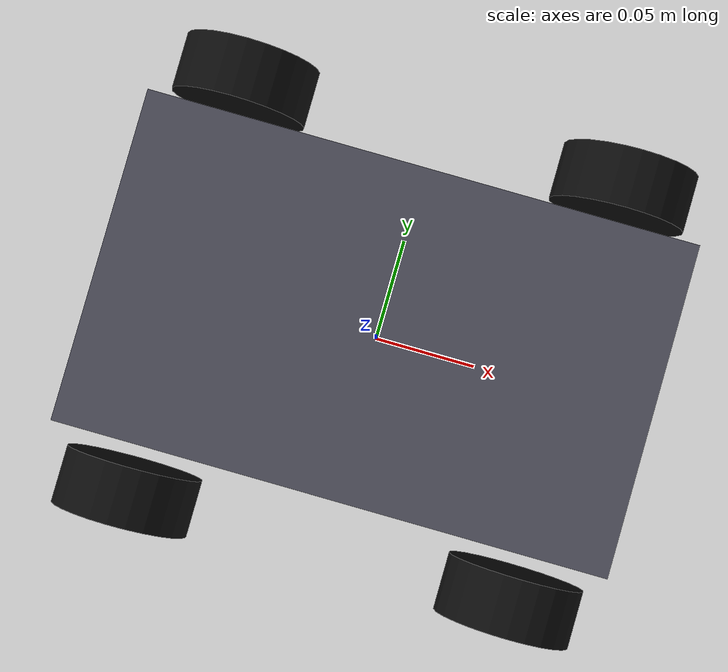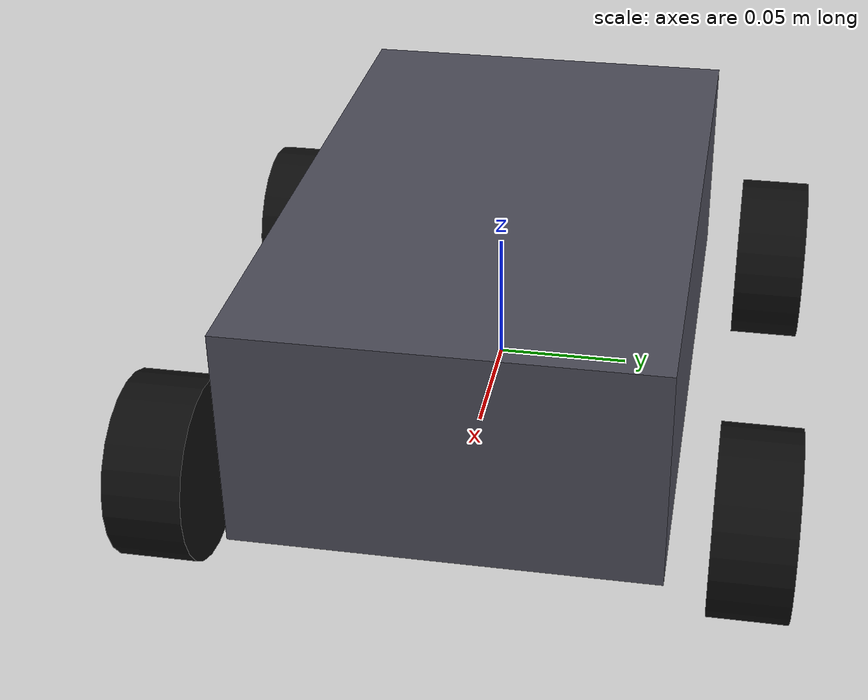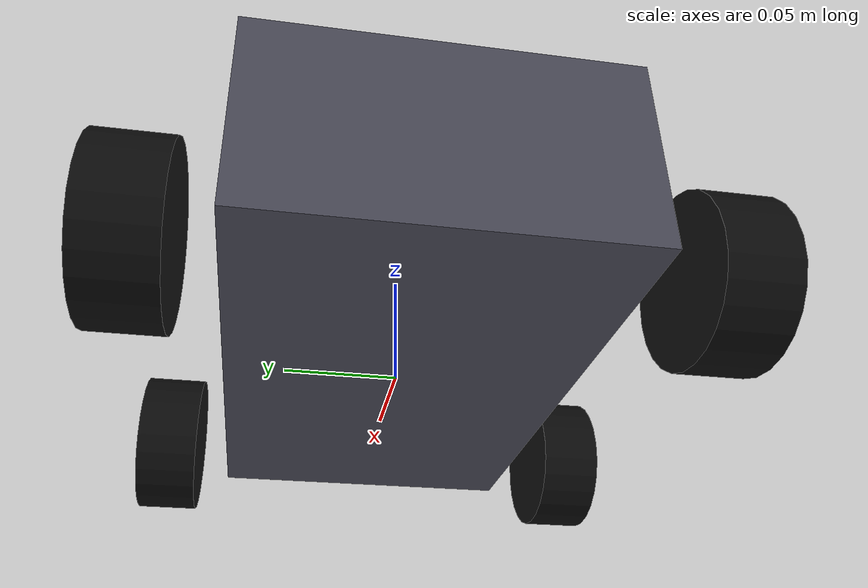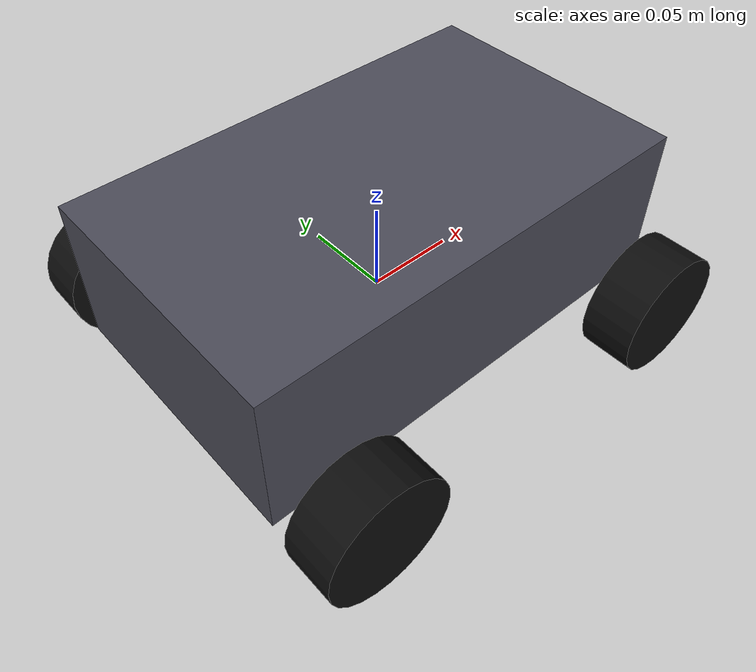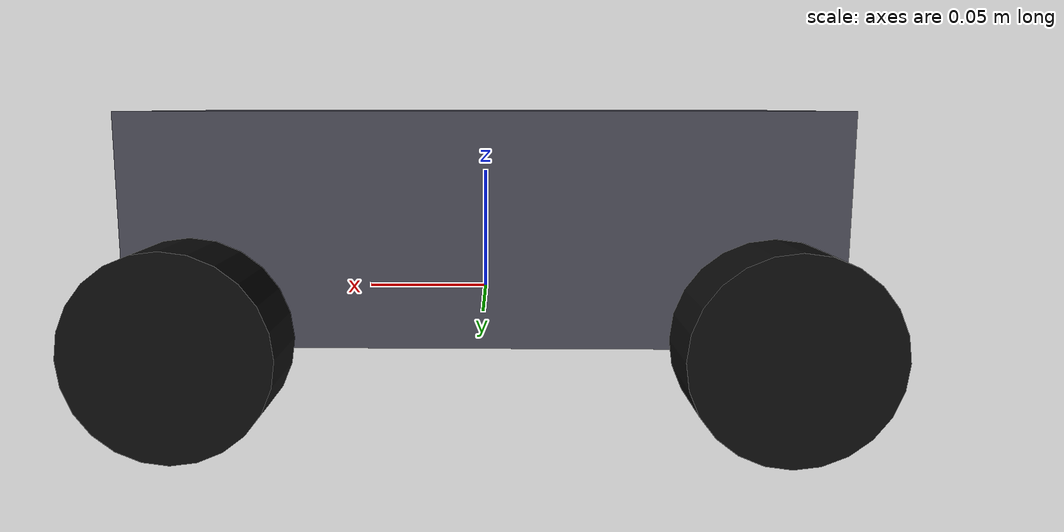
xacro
<?xml version="1.0"?>
<robot name="mecanum_robot" xmlns:xacro="http://www.ros.org/wiki/xacro">

  <!-- ============ Properties ============ -->
  <xacro:property name="chassis_length" value="0.254"/>
  <xacro:property name="chassis_width"  value="0.1524"/>
  <xacro:property name="chassis_height" value="0.083"/>
  <xacro:property name="chassis_mass"   value="5.0"/>

  <xacro:property name="wheel_radius" value="0.034"/>
  <xacro:property name="wheel_width"  value="0.0285"/>
  <xacro:property name="wheel_mass"   value="0.5"/>

  <xacro:property name="track_width"  value="0.21"/>
  <xacro:property name="axle_length"  value="0.194"/>
  <xacro:property name="wheel_z"      value="0.0"/>

  <!-- ============ Chassis ============ -->
  <link name="base_link"/>

  <link name="chassis">
    <inertial>
      <mass value="${chassis_mass}"/>
      <origin xyz="0 0 0"/>
      <inertia ixx="0.05" ixy="0" ixz="0" iyy="0.08" iyz="0" izz="0.1"/>
    </inertial>
    <visual>
      <geometry>
        <box size="${chassis_length} ${chassis_width} ${chassis_height}"/>
      </geometry>
      <material name="chassis_grey">
        <color rgba="0.3 0.3 0.35 1.0"/>
      </material>
    </visual>
    <collision>
      <geometry>
        <box size="${chassis_length} ${chassis_width} ${chassis_height}"/>
      </geometry>
    </collision>
  </link>

  <joint name="base_to_chassis" type="fixed">
    <parent link="base_link"/>
    <child link="chassis"/>
    <origin xyz="0 0 ${wheel_radius}"/>
  </joint>

  <!-- ============ Wheel macro ============ -->
  <!-- Placeholder cylinder wheels for now - real roller geometry is a later
       refinement once Week 3 kinematics are in place and you actually need
       to reason about roller contact angles. -->
  <xacro:macro name="wheel" params="prefix x_offset y_offset">
    <link name="${prefix}_wheel">
      <inertial>
        <mass value="${wheel_mass}"/>
        <origin xyz="0 0 0"/>
        <inertia ixx="0.001" ixy="0" ixz="0" iyy="0.001" iyz="0" izz="0.001"/>
      </inertial>
      <visual>
        <origin rpy="1.5708 0 0" xyz="0 0 0"/>
        <geometry>
          <cylinder radius="${wheel_radius}" length="${wheel_width}"/>
        </geometry>
        <material name="wheel_black">
          <color rgba="0.05 0.05 0.05 1.0"/>
        </material>
      </visual>
      <collision>
        <origin rpy="1.5708 0 0" xyz="0 0 0"/>
        <geometry>
          <cylinder radius="${wheel_radius}" length="${wheel_width}"/>
        </geometry>
      </collision>
    </link>

    <joint name="${prefix}_wheel_joint" type="continuous">
      <parent link="chassis"/>
      <child link="${prefix}_wheel"/>
      <origin xyz="${x_offset} ${y_offset} -${wheel_radius}"/>
      <axis xyz="0 1 0"/>
    </joint>
  </xacro:macro>

  <!-- Front-left, front-right, rear-left, rear-right -->
  <xacro:wheel prefix="front_left"  x_offset="${axle_length/2}"  y_offset="${track_width/2}"/>
  <xacro:wheel prefix="front_right" x_offset="${axle_length/2}"  y_offset="-${track_width/2}"/>
  <xacro:wheel prefix="rear_left"   x_offset="-${axle_length/2}" y_offset="${track_width/2}"/>
  <xacro:wheel prefix="rear_right"  x_offset="-${axle_length/2}" y_offset="-${track_width/2}"/>

  <!-- ============ Gazebo plugin: planar move (Week 2 placeholder) ============ -->
  <gazebo>
    <plugin name="planar_move_controller" filename="libgazebo_ros_planar_move.so">
      <ros>
        <namespace>/</namespace>
        <remapping>cmd_vel:=cmd_vel</remapping>
        <remapping>odom:=odom</remapping>
      </ros>
      <update_rate>50</update_rate>
      <publish_odom>true</publish_odom>
      <publish_odom_tf>true</publish_odom_tf>
      <publish_wheel_tf>false</publish_wheel_tf>
      <odometry_frame>odom</odometry_frame>
      <robot_base_frame>base_link</robot_base_frame>
      <covariance_x>0.0001</covariance_x>
      <covariance_y>0.0001</covariance_y>
      <covariance_yaw>0.01</covariance_yaw>
    </plugin>
  </gazebo>

</robot>
